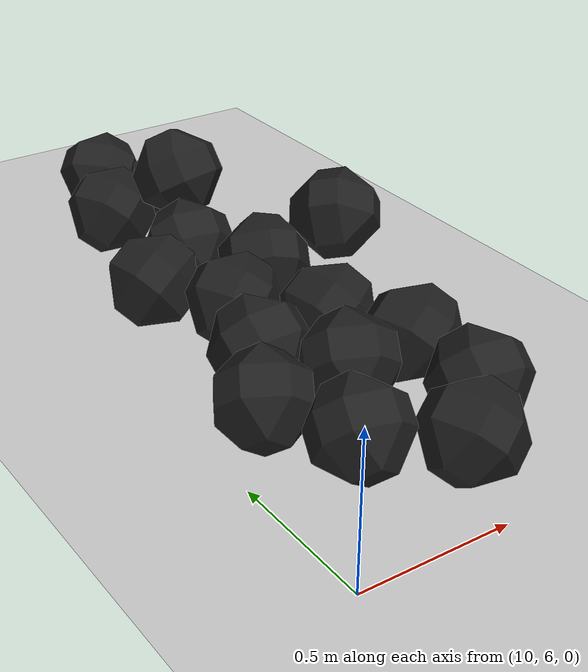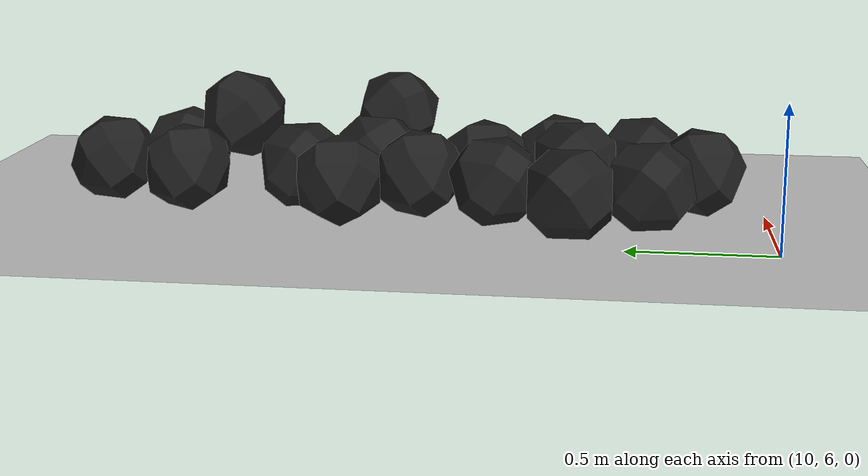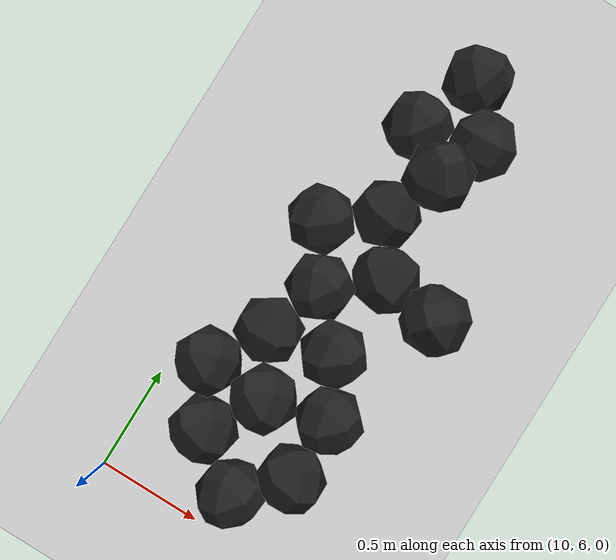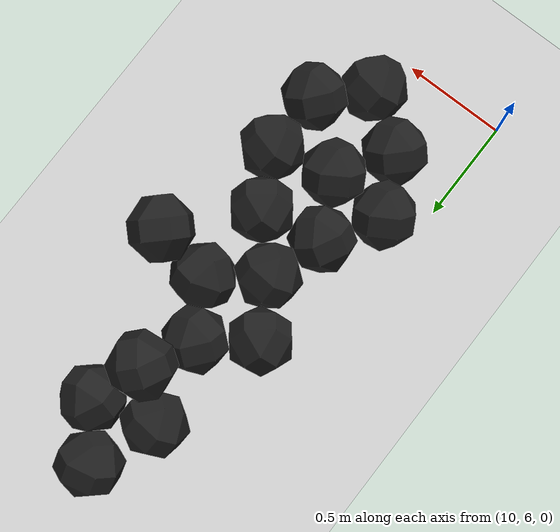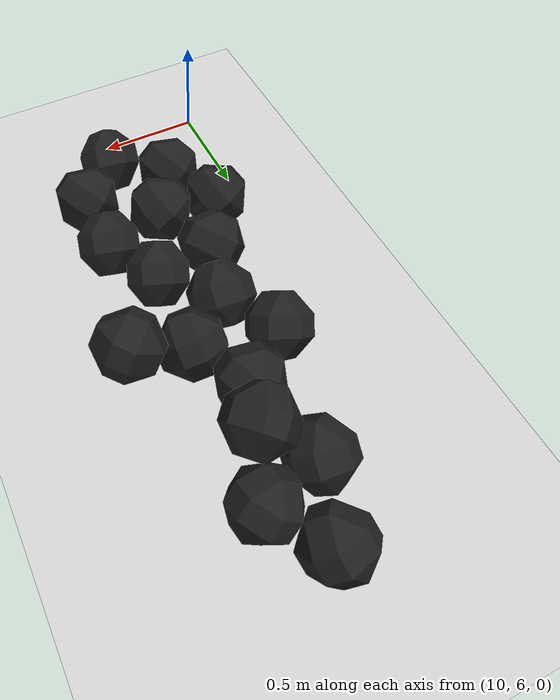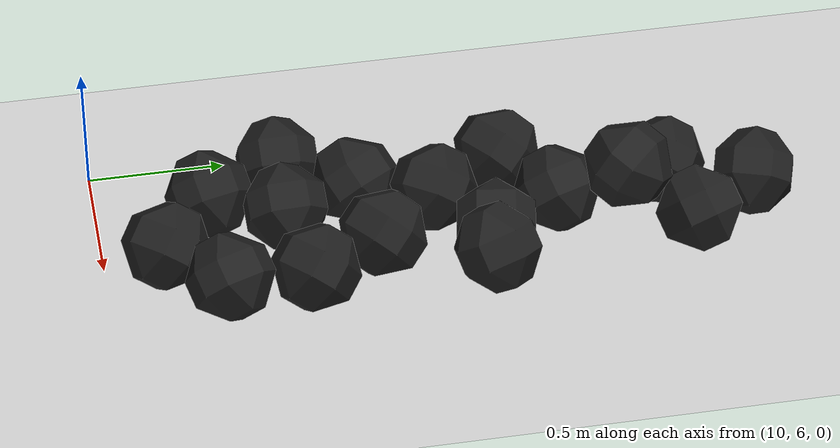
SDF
<sdf version="1.7">
 <world name="default">
  <model name="ground_plane">
   <static>1</static>
   <link name="link">
    <collision name="collision">
     <geometry><plane><normal>0 0 1</normal><size>100 100</size></plane></geometry>
     <surface><friction><ode><mu>100</mu><mu2>50</mu2></ode></friction></surface>
    </collision>
    <visual name="visual">
     <cast_shadows>0</cast_shadows>
     <geometry><plane><normal>0 0 1</normal><size>100 100</size></plane></geometry>
     <material>
      <script><uri>file://media/materials/scripts/gazebo.material</uri><name>Gazebo/Grey</name></script>
     </material>
    </visual>
   </link>
  </model>
  <model name="haoduomiantiaa_1">
   <link name="link_0">
    <inertial>
     <mass>0.2</mass>
     <inertia>
      <ixx>0.166667</ixx>
      <ixy>0</ixy>
      <ixz>0</ixz>
      <iyy>0.166667</iyy>
      <iyz>0</iyz>
      <izz>0.166667</izz>
     </inertia>
    </inertial>
    <visual name="visual">
     <geometry>
      <mesh>
       <uri>/home/lihaoyang/catkin_ws/src/pudong_gazebo/world/stl/haoduomianti.stl</uri>
       <scale>1 1 1</scale>
      </mesh>
     </geometry>
     <material>
      <lighting>1</lighting>
      <script><uri>file://media/materials/scripts/gazebo.material</uri><name>Gazebo/Black</name></script>
      <shader type="pixel"><normal_map>__default__</normal_map></shader>
      <ambient>0.3 0.3 0.3 1</ambient>
      <diffuse>0.7 0.7 0.7 1</diffuse>
      <specular>0.01 0.01 0.01 1</specular>
      <emissive>0 0 0 1</emissive>
     </material>
    </visual>
    <collision name="collision">
     <geometry>
      <mesh>
       <uri>/home/lihaoyang/catkin_ws/src/pudong_gazebo/world/stl/haoduomianti.stl</uri>
       <scale>1 1 1</scale>
      </mesh>
     </geometry>
     <surface>
      <friction>
       <ode><mu>1</mu><mu2>1</mu2><fdir1>0 0 0</fdir1><slip1>0</slip1><slip2>0</slip2></ode>
       <torsional>
        <coefficient>1</coefficient>
        <patch_radius>0</patch_radius>
        <surface_radius>0</surface_radius>
        <use_patch_radius>1</use_patch_radius>
        <ode><slip>0</slip></ode>
       </torsional>
      </friction>
      <bounce><restitution_coefficient>0</restitution_coefficient><threshold>1e+06</threshold></bounce>
      <contact>
       <collide_without_contact>0</collide_without_contact>
       <collide_without_contact_bitmask>1</collide_without_contact_bitmask>
       <collide_bitmask>1</collide_bitmask>
       <ode>
        <soft_cfm>0</soft_cfm>
        <soft_erp>0.2</soft_erp>
        <kp>1e+13</kp>
        <kd>1</kd>
        <max_vel>0.01</max_vel>
        <min_depth>0</min_depth>
       </ode>
       <bullet>
        <split_impulse>1</split_impulse>
        <split_impulse_penetration_threshold>-0.01</split_impulse_penetration_threshold>
        <soft_cfm>0</soft_cfm>
        <soft_erp>0.2</soft_erp>
        <kp>1e+13</kp>
        <kd>1</kd>
       </bullet>
      </contact>
     </surface>
    </collision>
   </link>
   <static>0</static>
   <pose>10.7707 6.73714 -0.115511 0.785241 -0.615547 0.266136</pose>
  </model>
  <model name="haoduomiantiaa_9">
   <link name="link_0">
    <inertial>
     <mass>0.2</mass>
     <inertia>
      <ixx>0.166667</ixx>
      <ixy>0</ixy>
      <ixz>0</ixz>
      <iyy>0.166667</iyy>
      <iyz>0</iyz>
      <izz>0.166667</izz>
     </inertia>
    </inertial>
    <visual name="visual">
     <geometry>
      <mesh>
       <uri>/home/lihaoyang/catkin_ws/src/pudong_gazebo/world/stl/haoduomianti.stl</uri>
       <scale>1 1 1</scale>
      </mesh>
     </geometry>
     <material>
      <lighting>1</lighting>
      <script><uri>file://media/materials/scripts/gazebo.material</uri><name>Gazebo/Black</name></script>
      <shader type="pixel"><normal_map>__default__</normal_map></shader>
      <ambient>0.3 0.3 0.3 1</ambient>
      <diffuse>0.7 0.7 0.7 1</diffuse>
      <specular>0.01 0.01 0.01 1</specular>
      <emissive>0 0 0 1</emissive>
     </material>
    </visual>
    <collision name="collision">
     <geometry>
      <mesh>
       <uri>/home/lihaoyang/catkin_ws/src/pudong_gazebo/world/stl/haoduomianti.stl</uri>
       <scale>1 1 1</scale>
      </mesh>
     </geometry>
     <surface>
      <friction>
       <ode><mu>1</mu><mu2>1</mu2><fdir1>0 0 0</fdir1><slip1>0</slip1><slip2>0</slip2></ode>
       <torsional>
        <coefficient>1</coefficient>
        <patch_radius>0</patch_radius>
        <surface_radius>0</surface_radius>
        <use_patch_radius>1</use_patch_radius>
        <ode><slip>0</slip></ode>
       </torsional>
      </friction>
      <bounce><restitution_coefficient>0</restitution_coefficient><threshold>1e+06</threshold></bounce>
      <contact>
       <collide_without_contact>0</collide_without_contact>
       <collide_without_contact_bitmask>1</collide_without_contact_bitmask>
       <collide_bitmask>1</collide_bitmask>
       <ode>
        <soft_cfm>0</soft_cfm>
        <soft_erp>0.2</soft_erp>
        <kp>1e+13</kp>
        <kd>1</kd>
        <max_vel>0.01</max_vel>
        <min_depth>0</min_depth>
       </ode>
       <bullet>
        <split_impulse>1</split_impulse>
        <split_impulse_penetration_threshold>-0.01</split_impulse_penetration_threshold>
        <soft_cfm>0</soft_cfm>
        <soft_erp>0.2</soft_erp>
        <kp>1e+13</kp>
        <kd>1</kd>
       </bullet>
      </contact>
     </surface>
    </collision>
   </link>
   <static>0</static>
   <pose>10.7412 7.39431 -0.094796 0.373444 -0.749649 1.1395</pose>
  </model>
  <model name="haoduomiantiaa_11">
   <link name="link_0">
    <inertial>
     <mass>0.2</mass>
     <inertia>
      <ixx>0.166667</ixx>
      <ixy>0</ixy>
      <ixz>0</ixz>
      <iyy>0.166667</iyy>
      <iyz>0</iyz>
      <izz>0.166667</izz>
     </inertia>
    </inertial>
    <visual name="visual">
     <geometry>
      <mesh>
       <uri>/home/lihaoyang/catkin_ws/src/pudong_gazebo/world/stl/haoduomianti.stl</uri>
       <scale>1 1 1</scale>
      </mesh>
     </geometry>
     <material>
      <lighting>1</lighting>
      <script><uri>file://media/materials/scripts/gazebo.material</uri><name>Gazebo/Black</name></script>
      <shader type="pixel"><normal_map>__default__</normal_map></shader>
      <ambient>0.3 0.3 0.3 1</ambient>
      <diffuse>0.7 0.7 0.7 1</diffuse>
      <specular>0.01 0.01 0.01 1</specular>
      <emissive>0 0 0 1</emissive>
     </material>
    </visual>
    <collision name="collision">
     <geometry>
      <mesh>
       <uri>/home/lihaoyang/catkin_ws/src/pudong_gazebo/world/stl/haoduomianti.stl</uri>
       <scale>1 1 1</scale>
      </mesh>
     </geometry>
     <surface>
      <friction>
       <ode><mu>1</mu><mu2>1</mu2><fdir1>0 0 0</fdir1><slip1>0</slip1><slip2>0</slip2></ode>
       <torsional>
        <coefficient>1</coefficient>
        <patch_radius>0</patch_radius>
        <surface_radius>0</surface_radius>
        <use_patch_radius>1</use_patch_radius>
        <ode><slip>0</slip></ode>
       </torsional>
      </friction>
      <bounce><restitution_coefficient>0</restitution_coefficient><threshold>1e+06</threshold></bounce>
      <contact>
       <collide_without_contact>0</collide_without_contact>
       <collide_without_contact_bitmask>1</collide_without_contact_bitmask>
       <collide_bitmask>1</collide_bitmask>
       <ode>
        <soft_cfm>0</soft_cfm>
        <soft_erp>0.2</soft_erp>
        <kp>1e+13</kp>
        <kd>1</kd>
        <max_vel>0.01</max_vel>
        <min_depth>0</min_depth>
       </ode>
       <bullet>
        <split_impulse>1</split_impulse>
        <split_impulse_penetration_threshold>-0.01</split_impulse_penetration_threshold>
        <soft_cfm>0</soft_cfm>
        <soft_erp>0.2</soft_erp>
        <kp>1e+13</kp>
        <kd>1</kd>
       </bullet>
      </contact>
     </surface>
    </collision>
   </link>
   <static>0</static>
   <pose>10.2685 7.47808 -0.113912 0.74513 -0.633824 0.167006</pose>
  </model>
  <model name="haoduomiantiaa_21">
   <link name="link_0">
    <inertial>
     <mass>0.2</mass>
     <inertia>
      <ixx>0.166667</ixx>
      <ixy>0</ixy>
      <ixz>0</ixz>
      <iyy>0.166667</iyy>
      <iyz>0</iyz>
      <izz>0.166667</izz>
     </inertia>
    </inertial>
    <visual name="visual">
     <geometry>
      <mesh>
       <uri>/home/lihaoyang/catkin_ws/src/pudong_gazebo/world/stl/haoduomianti.stl</uri>
       <scale>1 1 1</scale>
      </mesh>
     </geometry>
     <material>
      <lighting>1</lighting>
      <script><uri>file://media/materials/scripts/gazebo.material</uri><name>Gazebo/Black</name></script>
      <shader type="pixel"><normal_map>__default__</normal_map></shader>
      <ambient>0.3 0.3 0.3 1</ambient>
      <diffuse>0.7 0.7 0.7 1</diffuse>
      <specular>0.01 0.01 0.01 1</specular>
      <emissive>0 0 0 1</emissive>
     </material>
    </visual>
    <collision name="collision">
     <geometry>
      <mesh>
       <uri>/home/lihaoyang/catkin_ws/src/pudong_gazebo/world/stl/haoduomianti.stl</uri>
       <scale>1 1 1</scale>
      </mesh>
     </geometry>
     <surface>
      <friction>
       <ode><mu>1</mu><mu2>1</mu2><fdir1>0 0 0</fdir1><slip1>0</slip1><slip2>0</slip2></ode>
       <torsional>
        <coefficient>1</coefficient>
        <patch_radius>0</patch_radius>
        <surface_radius>0</surface_radius>
        <use_patch_radius>1</use_patch_radius>
        <ode><slip>0</slip></ode>
       </torsional>
      </friction>
      <bounce><restitution_coefficient>0</restitution_coefficient><threshold>1e+06</threshold></bounce>
      <contact>
       <collide_without_contact>0</collide_without_contact>
       <collide_without_contact_bitmask>1</collide_without_contact_bitmask>
       <collide_bitmask>1</collide_bitmask>
       <ode>
        <soft_cfm>0</soft_cfm>
        <soft_erp>0.2</soft_erp>
        <kp>1e+13</kp>
        <kd>1</kd>
        <max_vel>0.01</max_vel>
        <min_depth>0</min_depth>
       </ode>
       <bullet>
        <split_impulse>1</split_impulse>
        <split_impulse_penetration_threshold>-0.01</split_impulse_penetration_threshold>
        <soft_cfm>0</soft_cfm>
        <soft_erp>0.2</soft_erp>
        <kp>1e+13</kp>
        <kd>1</kd>
       </bullet>
      </contact>
     </surface>
    </collision>
   </link>
   <static>0</static>
   <pose>10.7084 8.08724 -0.10261 1.06124 -0.717663 -2.71904</pose>
  </model>
  <model name="haoduomiantiaa_28">
   <link name="link_0">
    <inertial>
     <mass>0.2</mass>
     <inertia>
      <ixx>0.166667</ixx>
      <ixy>0</ixy>
      <ixz>0</ixz>
      <iyy>0.166667</iyy>
      <iyz>0</iyz>
      <izz>0.166667</izz>
     </inertia>
    </inertial>
    <visual name="visual">
     <geometry>
      <mesh>
       <uri>/home/lihaoyang/catkin_ws/src/pudong_gazebo/world/stl/haoduomianti.stl</uri>
       <scale>1 1 1</scale>
      </mesh>
     </geometry>
     <material>
      <lighting>1</lighting>
      <script><uri>file://media/materials/scripts/gazebo.material</uri><name>Gazebo/Black</name></script>
      <shader type="pixel"><normal_map>__default__</normal_map></shader>
      <ambient>0.3 0.3 0.3 1</ambient>
      <diffuse>0.7 0.7 0.7 1</diffuse>
      <specular>0.01 0.01 0.01 1</specular>
      <emissive>0 0 0 1</emissive>
     </material>
    </visual>
    <collision name="collision">
     <geometry>
      <mesh>
       <uri>/home/lihaoyang/catkin_ws/src/pudong_gazebo/world/stl/haoduomianti.stl</uri>
       <scale>1 1 1</scale>
      </mesh>
     </geometry>
     <surface>
      <friction>
       <ode><mu>1</mu><mu2>1</mu2><fdir1>0 0 0</fdir1><slip1>0</slip1><slip2>0</slip2></ode>
       <torsional>
        <coefficient>1</coefficient>
        <patch_radius>0</patch_radius>
        <surface_radius>0</surface_radius>
        <use_patch_radius>1</use_patch_radius>
        <ode><slip>0</slip></ode>
       </torsional>
      </friction>
      <bounce><restitution_coefficient>0</restitution_coefficient><threshold>1e+06</threshold></bounce>
      <contact>
       <collide_without_contact>0</collide_without_contact>
       <collide_without_contact_bitmask>1</collide_without_contact_bitmask>
       <collide_bitmask>1</collide_bitmask>
       <ode>
        <soft_cfm>0</soft_cfm>
        <soft_erp>0.2</soft_erp>
        <kp>1e+13</kp>
        <kd>1</kd>
        <max_vel>0.01</max_vel>
        <min_depth>0</min_depth>
       </ode>
       <bullet>
        <split_impulse>1</split_impulse>
        <split_impulse_penetration_threshold>-0.01</split_impulse_penetration_threshold>
        <soft_cfm>0</soft_cfm>
        <soft_erp>0.2</soft_erp>
        <kp>1e+13</kp>
        <kd>1</kd>
       </bullet>
      </contact>
     </surface>
    </collision>
   </link>
   <static>0</static>
   <pose>10.4175 7.22543 -0.115694 0.785336 -0.615515 -1.64544</pose>
  </model>
  <model name="haoduomiantiaa_31">
   <link name="link_0">
    <inertial>
     <mass>0.2</mass>
     <inertia>
      <ixx>0.166667</ixx>
      <ixy>0</ixy>
      <ixz>0</ixz>
      <iyy>0.166667</iyy>
      <iyz>0</iyz>
      <izz>0.166667</izz>
     </inertia>
    </inertial>
    <visual name="visual">
     <geometry>
      <mesh>
       <uri>/home/lihaoyang/catkin_ws/src/pudong_gazebo/world/stl/haoduomianti.stl</uri>
       <scale>1 1 1</scale>
      </mesh>
     </geometry>
     <material>
      <lighting>1</lighting>
      <script><uri>file://media/materials/scripts/gazebo.material</uri><name>Gazebo/Black</name></script>
      <shader type="pixel"><normal_map>__default__</normal_map></shader>
      <ambient>0.3 0.3 0.3 1</ambient>
      <diffuse>0.7 0.7 0.7 1</diffuse>
      <specular>0.01 0.01 0.01 1</specular>
      <emissive>0 0 0 1</emissive>
     </material>
    </visual>
    <collision name="collision">
     <geometry>
      <mesh>
       <uri>/home/lihaoyang/catkin_ws/src/pudong_gazebo/world/stl/haoduomianti.stl</uri>
       <scale>1 1 1</scale>
      </mesh>
     </geometry>
     <surface>
      <friction>
       <ode><mu>1</mu><mu2>1</mu2><fdir1>0 0 0</fdir1><slip1>0</slip1><slip2>0</slip2></ode>
       <torsional>
        <coefficient>1</coefficient>
        <patch_radius>0</patch_radius>
        <surface_radius>0</surface_radius>
        <use_patch_radius>1</use_patch_radius>
        <ode><slip>0</slip></ode>
       </torsional>
      </friction>
      <bounce><restitution_coefficient>0</restitution_coefficient><threshold>1e+06</threshold></bounce>
      <contact>
       <collide_without_contact>0</collide_without_contact>
       <collide_without_contact_bitmask>1</collide_without_contact_bitmask>
       <collide_bitmask>1</collide_bitmask>
       <ode>
        <soft_cfm>0</soft_cfm>
        <soft_erp>0.2</soft_erp>
        <kp>1e+13</kp>
        <kd>1</kd>
        <max_vel>0.01</max_vel>
        <min_depth>0</min_depth>
       </ode>
       <bullet>
        <split_impulse>1</split_impulse>
        <split_impulse_penetration_threshold>-0.01</split_impulse_penetration_threshold>
        <soft_cfm>0</soft_cfm>
        <soft_erp>0.2</soft_erp>
        <kp>1e+13</kp>
        <kd>1</kd>
       </bullet>
      </contact>
     </surface>
    </collision>
   </link>
   <static>0</static>
   <pose>10.501 7.66325 -0.115425 0.785508 -0.615625 -2.77699</pose>
  </model>
  <model name="haoduomiantiaa_33">
   <link name="link_0">
    <inertial>
     <mass>0.2</mass>
     <inertia>
      <ixx>0.166667</ixx>
      <ixy>0</ixy>
      <ixz>0</ixz>
      <iyy>0.166667</iyy>
      <iyz>0</iyz>
      <izz>0.166667</izz>
     </inertia>
    </inertial>
    <visual name="visual">
     <geometry>
      <mesh>
       <uri>/home/lihaoyang/catkin_ws/src/pudong_gazebo/world/stl/haoduomianti.stl</uri>
       <scale>1 1 1</scale>
      </mesh>
     </geometry>
     <material>
      <lighting>1</lighting>
      <script><uri>file://media/materials/scripts/gazebo.material</uri><name>Gazebo/Black</name></script>
      <shader type="pixel"><normal_map>__default__</normal_map></shader>
      <ambient>0.3 0.3 0.3 1</ambient>
      <diffuse>0.7 0.7 0.7 1</diffuse>
      <specular>0.01 0.01 0.01 1</specular>
      <emissive>0 0 0 1</emissive>
     </material>
    </visual>
    <collision name="collision">
     <geometry>
      <mesh>
       <uri>/home/lihaoyang/catkin_ws/src/pudong_gazebo/world/stl/haoduomianti.stl</uri>
       <scale>1 1 1</scale>
      </mesh>
     </geometry>
     <surface>
      <friction>
       <ode><mu>1</mu><mu2>1</mu2><fdir1>0 0 0</fdir1><slip1>0</slip1><slip2>0</slip2></ode>
       <torsional>
        <coefficient>1</coefficient>
        <patch_radius>0</patch_radius>
        <surface_radius>0</surface_radius>
        <use_patch_radius>1</use_patch_radius>
        <ode><slip>0</slip></ode>
       </torsional>
      </friction>
      <bounce><restitution_coefficient>0</restitution_coefficient><threshold>1e+06</threshold></bounce>
      <contact>
       <collide_without_contact>0</collide_without_contact>
       <collide_without_contact_bitmask>1</collide_without_contact_bitmask>
       <collide_bitmask>1</collide_bitmask>
       <ode>
        <soft_cfm>0</soft_cfm>
        <soft_erp>0.2</soft_erp>
        <kp>1e+13</kp>
        <kd>1</kd>
        <max_vel>0.01</max_vel>
        <min_depth>0</min_depth>
       </ode>
       <bullet>
        <split_impulse>1</split_impulse>
        <split_impulse_penetration_threshold>-0.01</split_impulse_penetration_threshold>
        <soft_cfm>0</soft_cfm>
        <soft_erp>0.2</soft_erp>
        <kp>1e+13</kp>
        <kd>1</kd>
       </bullet>
      </contact>
     </surface>
    </collision>
   </link>
   <static>0</static>
   <pose>10.1697 6.68176 -0.115468 0.785363 -0.615492 1.06337</pose>
  </model>
  <model name="haoduomiantiaa_34">
   <link name="link_0">
    <inertial>
     <mass>0.2</mass>
     <inertia>
      <ixx>0.166667</ixx>
      <ixy>0</ixy>
      <ixz>0</ixz>
      <iyy>0.166667</iyy>
      <iyz>0</iyz>
      <izz>0.166667</izz>
     </inertia>
    </inertial>
    <visual name="visual">
     <geometry>
      <mesh>
       <uri>/home/lihaoyang/catkin_ws/src/pudong_gazebo/world/stl/haoduomianti.stl</uri>
       <scale>1 1 1</scale>
      </mesh>
     </geometry>
     <material>
      <lighting>1</lighting>
      <script><uri>file://media/materials/scripts/gazebo.material</uri><name>Gazebo/Black</name></script>
      <shader type="pixel"><normal_map>__default__</normal_map></shader>
      <ambient>0.3 0.3 0.3 1</ambient>
      <diffuse>0.7 0.7 0.7 1</diffuse>
      <specular>0.01 0.01 0.01 1</specular>
      <emissive>0 0 0 1</emissive>
     </material>
    </visual>
    <collision name="collision">
     <geometry>
      <mesh>
       <uri>/home/lihaoyang/catkin_ws/src/pudong_gazebo/world/stl/haoduomianti.stl</uri>
       <scale>1 1 1</scale>
      </mesh>
     </geometry>
     <surface>
      <friction>
       <ode><mu>1</mu><mu2>1</mu2><fdir1>0 0 0</fdir1><slip1>0</slip1><slip2>0</slip2></ode>
       <torsional>
        <coefficient>1</coefficient>
        <patch_radius>0</patch_radius>
        <surface_radius>0</surface_radius>
        <use_patch_radius>1</use_patch_radius>
        <ode><slip>0</slip></ode>
       </torsional>
      </friction>
      <bounce><restitution_coefficient>0</restitution_coefficient><threshold>1e+06</threshold></bounce>
      <contact>
       <collide_without_contact>0</collide_without_contact>
       <collide_without_contact_bitmask>1</collide_without_contact_bitmask>
       <collide_bitmask>1</collide_bitmask>
       <ode>
        <soft_cfm>0</soft_cfm>
        <soft_erp>0.2</soft_erp>
        <kp>1e+13</kp>
        <kd>1</kd>
        <max_vel>0.01</max_vel>
        <min_depth>0</min_depth>
       </ode>
       <bullet>
        <split_impulse>1</split_impulse>
        <split_impulse_penetration_threshold>-0.01</split_impulse_penetration_threshold>
        <soft_cfm>0</soft_cfm>
        <soft_erp>0.2</soft_erp>
        <kp>1e+13</kp>
        <kd>1</kd>
       </bullet>
      </contact>
     </surface>
    </collision>
   </link>
   <static>0</static>
   <pose>10.3108 6.41066 -0.115508 0.785402 -0.615467 -0.781503</pose>
  </model>
  <model name="haoduomiantiaa_36">
   <link name="link_0">
    <inertial>
     <mass>0.2</mass>
     <inertia>
      <ixx>0.166667</ixx>
      <ixy>0</ixy>
      <ixz>0</ixz>
      <iyy>0.166667</iyy>
      <iyz>0</iyz>
      <izz>0.166667</izz>
     </inertia>
    </inertial>
    <visual name="visual">
     <geometry>
      <mesh>
       <uri>/home/lihaoyang/catkin_ws/src/pudong_gazebo/world/stl/haoduomianti.stl</uri>
       <scale>1 1 1</scale>
      </mesh>
     </geometry>
     <material>
      <lighting>1</lighting>
      <script><uri>file://media/materials/scripts/gazebo.material</uri><name>Gazebo/Black</name></script>
      <shader type="pixel"><normal_map>__default__</normal_map></shader>
      <ambient>0.3 0.3 0.3 1</ambient>
      <diffuse>0.7 0.7 0.7 1</diffuse>
      <specular>0.01 0.01 0.01 1</specular>
      <emissive>0 0 0 1</emissive>
     </material>
    </visual>
    <collision name="collision">
     <geometry>
      <mesh>
       <uri>/home/lihaoyang/catkin_ws/src/pudong_gazebo/world/stl/haoduomianti.stl</uri>
       <scale>1 1 1</scale>
      </mesh>
     </geometry>
     <surface>
      <friction>
       <ode><mu>1</mu><mu2>1</mu2><fdir1>0 0 0</fdir1><slip1>0</slip1><slip2>0</slip2></ode>
       <torsional>
        <coefficient>1</coefficient>
        <patch_radius>0</patch_radius>
        <surface_radius>0</surface_radius>
        <use_patch_radius>1</use_patch_radius>
        <ode><slip>0</slip></ode>
       </torsional>
      </friction>
      <bounce><restitution_coefficient>0</restitution_coefficient><threshold>1e+06</threshold></bounce>
      <contact>
       <collide_without_contact>0</collide_without_contact>
       <collide_without_contact_bitmask>1</collide_without_contact_bitmask>
       <collide_bitmask>1</collide_bitmask>
       <ode>
        <soft_cfm>0</soft_cfm>
        <soft_erp>0.2</soft_erp>
        <kp>1e+13</kp>
        <kd>1</kd>
        <max_vel>0.01</max_vel>
        <min_depth>0</min_depth>
       </ode>
       <bullet>
        <split_impulse>1</split_impulse>
        <split_impulse_penetration_threshold>-0.01</split_impulse_penetration_threshold>
        <soft_cfm>0</soft_cfm>
        <soft_erp>0.2</soft_erp>
        <kp>1e+13</kp>
        <kd>1</kd>
       </bullet>
      </contact>
     </surface>
    </collision>
   </link>
   <static>0</static>
   <pose>10.8323 7.41841 0.035604 0.361168 -0.87682 -2.65538</pose>
  </model>
  <model name="haoduomiantiaa_68">
   <link name="link_0">
    <inertial>
     <mass>0.2</mass>
     <inertia>
      <ixx>0.166667</ixx>
      <ixy>0</ixy>
      <ixz>0</ixz>
      <iyy>0.166667</iyy>
      <iyz>0</iyz>
      <izz>0.166667</izz>
     </inertia>
    </inertial>
    <visual name="visual">
     <geometry>
      <mesh>
       <uri>/home/lihaoyang/catkin_ws/src/pudong_gazebo/world/stl/haoduomianti.stl</uri>
       <scale>1 1 1</scale>
      </mesh>
     </geometry>
     <material>
      <lighting>1</lighting>
      <script><uri>file://media/materials/scripts/gazebo.material</uri><name>Gazebo/Black</name></script>
      <shader type="pixel"><normal_map>__default__</normal_map></shader>
      <ambient>0.3 0.3 0.3 1</ambient>
      <diffuse>0.7 0.7 0.7 1</diffuse>
      <specular>0.01 0.01 0.01 1</specular>
      <emissive>0 0 0 1</emissive>
     </material>
    </visual>
    <collision name="collision">
     <geometry>
      <mesh>
       <uri>/home/lihaoyang/catkin_ws/src/pudong_gazebo/world/stl/haoduomianti.stl</uri>
       <scale>1 1 1</scale>
      </mesh>
     </geometry>
     <surface>
      <friction>
       <ode><mu>1</mu><mu2>1</mu2><fdir1>0 0 0</fdir1><slip1>0</slip1><slip2>0</slip2></ode>
       <torsional>
        <coefficient>1</coefficient>
        <patch_radius>0</patch_radius>
        <surface_radius>0</surface_radius>
        <use_patch_radius>1</use_patch_radius>
        <ode><slip>0</slip></ode>
       </torsional>
      </friction>
      <bounce><restitution_coefficient>0</restitution_coefficient><threshold>1e+06</threshold></bounce>
      <contact>
       <collide_without_contact>0</collide_without_contact>
       <collide_without_contact_bitmask>1</collide_without_contact_bitmask>
       <collide_bitmask>1</collide_bitmask>
       <ode>
        <soft_cfm>0</soft_cfm>
        <soft_erp>0.2</soft_erp>
        <kp>1e+13</kp>
        <kd>1</kd>
        <max_vel>0.01</max_vel>
        <min_depth>0</min_depth>
       </ode>
       <bullet>
        <split_impulse>1</split_impulse>
        <split_impulse_penetration_threshold>-0.01</split_impulse_penetration_threshold>
        <soft_cfm>0</soft_cfm>
        <soft_erp>0.2</soft_erp>
        <kp>1e+13</kp>
        <kd>1</kd>
       </bullet>
      </contact>
     </surface>
    </collision>
   </link>
   <static>0</static>
   <pose>10.4106 8.07119 -0.115469 0.785385 -0.61548 0.430348</pose>
  </model>
  <model name="haoduomiantiaa_72">
   <link name="link_0">
    <inertial>
     <mass>0.2</mass>
     <inertia>
      <ixx>0.166667</ixx>
      <ixy>0</ixy>
      <ixz>0</ixz>
      <iyy>0.166667</iyy>
      <iyz>0</iyz>
      <izz>0.166667</izz>
     </inertia>
    </inertial>
    <visual name="visual">
     <geometry>
      <mesh>
       <uri>/home/lihaoyang/catkin_ws/src/pudong_gazebo/world/stl/haoduomianti.stl</uri>
       <scale>1 1 1</scale>
      </mesh>
     </geometry>
     <material>
      <lighting>1</lighting>
      <script><uri>file://media/materials/scripts/gazebo.material</uri><name>Gazebo/Black</name></script>
      <shader type="pixel"><normal_map>__default__</normal_map></shader>
      <ambient>0.3 0.3 0.3 1</ambient>
      <diffuse>0.7 0.7 0.7 1</diffuse>
      <specular>0.01 0.01 0.01 1</specular>
      <emissive>0 0 0 1</emissive>
     </material>
    </visual>
    <collision name="collision">
     <geometry>
      <mesh>
       <uri>/home/lihaoyang/catkin_ws/src/pudong_gazebo/world/stl/haoduomianti.stl</uri>
       <scale>1 1 1</scale>
      </mesh>
     </geometry>
     <surface>
      <friction>
       <ode><mu>1</mu><mu2>1</mu2><fdir1>0 0 0</fdir1><slip1>0</slip1><slip2>0</slip2></ode>
       <torsional>
        <coefficient>1</coefficient>
        <patch_radius>0</patch_radius>
        <surface_radius>0</surface_radius>
        <use_patch_radius>1</use_patch_radius>
        <ode><slip>0</slip></ode>
       </torsional>
      </friction>
      <bounce><restitution_coefficient>0</restitution_coefficient><threshold>1e+06</threshold></bounce>
      <contact>
       <collide_without_contact>0</collide_without_contact>
       <collide_without_contact_bitmask>1</collide_without_contact_bitmask>
       <collide_bitmask>1</collide_bitmask>
       <ode>
        <soft_cfm>0</soft_cfm>
        <soft_erp>0.2</soft_erp>
        <kp>1e+13</kp>
        <kd>1</kd>
        <max_vel>0.01</max_vel>
        <min_depth>0</min_depth>
       </ode>
       <bullet>
        <split_impulse>1</split_impulse>
        <split_impulse_penetration_threshold>-0.01</split_impulse_penetration_threshold>
        <soft_cfm>0</soft_cfm>
        <soft_erp>0.2</soft_erp>
        <kp>1e+13</kp>
        <kd>1</kd>
       </bullet>
      </contact>
     </surface>
    </collision>
   </link>
   <static>0</static>
   <pose>10.5313 8.38991 -0.11548 0.785395 -0.615479 2.83144</pose>
  </model>
  <model name="haoduomiantiaa_77">
   <link name="link_0">
    <inertial>
     <mass>0.2</mass>
     <inertia>
      <ixx>0.166667</ixx>
      <ixy>0</ixy>
      <ixz>0</ixz>
      <iyy>0.166667</iyy>
      <iyz>0</iyz>
      <izz>0.166667</izz>
     </inertia>
    </inertial>
    <visual name="visual">
     <geometry>
      <mesh>
       <uri>/home/lihaoyang/catkin_ws/src/pudong_gazebo/world/stl/haoduomianti.stl</uri>
       <scale>1 1 1</scale>
      </mesh>
     </geometry>
     <material>
      <lighting>1</lighting>
      <script><uri>file://media/materials/scripts/gazebo.material</uri><name>Gazebo/Black</name></script>
      <shader type="pixel"><normal_map>__default__</normal_map></shader>
      <ambient>0.3 0.3 0.3 1</ambient>
      <diffuse>0.7 0.7 0.7 1</diffuse>
      <specular>0.01 0.01 0.01 1</specular>
      <emissive>0 0 0 1</emissive>
     </material>
    </visual>
    <collision name="collision">
     <geometry>
      <mesh>
       <uri>/home/lihaoyang/catkin_ws/src/pudong_gazebo/world/stl/haoduomianti.stl</uri>
       <scale>1 1 1</scale>
      </mesh>
     </geometry>
     <surface>
      <friction>
       <ode><mu>1</mu><mu2>1</mu2><fdir1>0 0 0</fdir1><slip1>0</slip1><slip2>0</slip2></ode>
       <torsional>
        <coefficient>1</coefficient>
        <patch_radius>0</patch_radius>
        <surface_radius>0</surface_radius>
        <use_patch_radius>1</use_patch_radius>
        <ode><slip>0</slip></ode>
       </torsional>
      </friction>
      <bounce><restitution_coefficient>0</restitution_coefficient><threshold>1e+06</threshold></bounce>
      <contact>
       <collide_without_contact>0</collide_without_contact>
       <collide_without_contact_bitmask>1</collide_without_contact_bitmask>
       <collide_bitmask>1</collide_bitmask>
       <ode>
        <soft_cfm>0</soft_cfm>
        <soft_erp>0.2</soft_erp>
        <kp>1e+13</kp>
        <kd>1</kd>
        <max_vel>0.01</max_vel>
        <min_depth>0</min_depth>
       </ode>
       <bullet>
        <split_impulse>1</split_impulse>
        <split_impulse_penetration_threshold>-0.01</split_impulse_penetration_threshold>
        <soft_cfm>0</soft_cfm>
        <soft_erp>0.2</soft_erp>
        <kp>1e+13</kp>
        <kd>1</kd>
       </bullet>
      </contact>
     </surface>
    </collision>
   </link>
   <static>0</static>
   <pose>10.5646 6.22619 -0.115479 0.785402 -0.615484 2.46216</pose>
  </model>
  <model name="haoduomiantiaa_98">
   <link name="link_0">
    <inertial>
     <mass>0.2</mass>
     <inertia>
      <ixx>0.166667</ixx>
      <ixy>0</ixy>
      <ixz>0</ixz>
      <iyy>0.166667</iyy>
      <iyz>0</iyz>
      <izz>0.166667</izz>
     </inertia>
    </inertial>
    <visual name="visual">
     <geometry>
      <mesh>
       <uri>/home/lihaoyang/catkin_ws/src/pudong_gazebo/world/stl/haoduomianti.stl</uri>
       <scale>1 1 1</scale>
      </mesh>
     </geometry>
     <material>
      <lighting>1</lighting>
      <script><uri>file://media/materials/scripts/gazebo.material</uri><name>Gazebo/Black</name></script>
      <shader type="pixel"><normal_map>__default__</normal_map></shader>
      <ambient>0.3 0.3 0.3 1</ambient>
      <diffuse>0.7 0.7 0.7 1</diffuse>
      <specular>0.01 0.01 0.01 1</specular>
      <emissive>0 0 0 1</emissive>
     </material>
    </visual>
    <collision name="collision">
     <geometry>
      <mesh>
       <uri>/home/lihaoyang/catkin_ws/src/pudong_gazebo/world/stl/haoduomianti.stl</uri>
       <scale>1 1 1</scale>
      </mesh>
     </geometry>
     <surface>
      <friction>
       <ode><mu>1</mu><mu2>1</mu2><fdir1>0 0 0</fdir1><slip1>0</slip1><slip2>0</slip2></ode>
       <torsional>
        <coefficient>1</coefficient>
        <patch_radius>0</patch_radius>
        <surface_radius>0</surface_radius>
        <use_patch_radius>1</use_patch_radius>
        <ode><slip>0</slip></ode>
       </torsional>
      </friction>
      <bounce><restitution_coefficient>0</restitution_coefficient><threshold>1e+06</threshold></bounce>
      <contact>
       <collide_without_contact>0</collide_without_contact>
       <collide_without_contact_bitmask>1</collide_without_contact_bitmask>
       <collide_bitmask>1</collide_bitmask>
       <ode>
        <soft_cfm>0</soft_cfm>
        <soft_erp>0.2</soft_erp>
        <kp>1e+13</kp>
        <kd>1</kd>
        <max_vel>0.01</max_vel>
        <min_depth>0</min_depth>
       </ode>
       <bullet>
        <split_impulse>1</split_impulse>
        <split_impulse_penetration_threshold>-0.01</split_impulse_penetration_threshold>
        <soft_cfm>0</soft_cfm>
        <soft_erp>0.2</soft_erp>
        <kp>1e+13</kp>
        <kd>1</kd>
       </bullet>
      </contact>
     </surface>
    </collision>
   </link>
   <static>0</static>
   <pose>10.3264 6.94375 -0.115467 0.785353 -0.615466 -0.472421</pose>
  </model>
  <model name="haoduomiantiaa_112">
   <link name="link_0">
    <inertial>
     <mass>0.2</mass>
     <inertia>
      <ixx>0.166667</ixx>
      <ixy>0</ixy>
      <ixz>0</ixz>
      <iyy>0.166667</iyy>
      <iyz>0</iyz>
      <izz>0.166667</izz>
     </inertia>
    </inertial>
    <visual name="visual">
     <geometry>
      <mesh>
       <uri>/home/lihaoyang/catkin_ws/src/pudong_gazebo/world/stl/haoduomianti.stl</uri>
       <scale>1 1 1</scale>
      </mesh>
     </geometry>
     <material>
      <lighting>1</lighting>
      <script><uri>file://media/materials/scripts/gazebo.material</uri><name>Gazebo/Black</name></script>
      <shader type="pixel"><normal_map>__default__</normal_map></shader>
      <ambient>0.3 0.3 0.3 1</ambient>
      <diffuse>0.7 0.7 0.7 1</diffuse>
      <specular>0.01 0.01 0.01 1</specular>
      <emissive>0 0 0 1</emissive>
     </material>
    </visual>
    <collision name="collision">
     <geometry>
      <mesh>
       <uri>/home/lihaoyang/catkin_ws/src/pudong_gazebo/world/stl/haoduomianti.stl</uri>
       <scale>1 1 1</scale>
      </mesh>
     </geometry>
     <surface>
      <friction>
       <ode><mu>1</mu><mu2>1</mu2><fdir1>0 0 0</fdir1><slip1>0</slip1><slip2>0</slip2></ode>
       <torsional>
        <coefficient>1</coefficient>
        <patch_radius>0</patch_radius>
        <surface_radius>0</surface_radius>
        <use_patch_radius>1</use_patch_radius>
        <ode><slip>0</slip></ode>
       </torsional>
      </friction>
      <bounce><restitution_coefficient>0</restitution_coefficient><threshold>1e+06</threshold></bounce>
      <contact>
       <collide_without_contact>0</collide_without_contact>
       <collide_without_contact_bitmask>1</collide_without_contact_bitmask>
       <collide_bitmask>1</collide_bitmask>
       <ode>
        <soft_cfm>0</soft_cfm>
        <soft_erp>0.2</soft_erp>
        <kp>1e+13</kp>
        <kd>1</kd>
        <max_vel>0.01</max_vel>
        <min_depth>0</min_depth>
       </ode>
       <bullet>
        <split_impulse>1</split_impulse>
        <split_impulse_penetration_threshold>-0.01</split_impulse_penetration_threshold>
        <soft_cfm>0</soft_cfm>
        <soft_erp>0.2</soft_erp>
        <kp>1e+13</kp>
        <kd>1</kd>
       </bullet>
      </contact>
     </surface>
    </collision>
   </link>
   <static>0</static>
   <pose>10.6045 7.99643 0.066428 1.17041 -0.450139 -0.600129</pose>
  </model>
  <model name="haoduomiantiaa_125">
   <link name="link_0">
    <inertial>
     <mass>0.2</mass>
     <inertia>
      <ixx>0.166667</ixx>
      <ixy>0</ixy>
      <ixz>0</ixz>
      <iyy>0.166667</iyy>
      <iyz>0</iyz>
      <izz>0.166667</izz>
     </inertia>
    </inertial>
    <visual name="visual">
     <geometry>
      <mesh>
       <uri>/home/lihaoyang/catkin_ws/src/pudong_gazebo/world/stl/haoduomianti.stl</uri>
       <scale>1 1 1</scale>
      </mesh>
     </geometry>
     <material>
      <lighting>1</lighting>
      <script><uri>file://media/materials/scripts/gazebo.material</uri><name>Gazebo/Black</name></script>
      <shader type="pixel"><normal_map>__default__</normal_map></shader>
      <ambient>0.3 0.3 0.3 1</ambient>
      <diffuse>0.7 0.7 0.7 1</diffuse>
      <specular>0.01 0.01 0.01 1</specular>
      <emissive>0 0 0 1</emissive>
     </material>
    </visual>
    <collision name="collision">
     <geometry>
      <mesh>
       <uri>/home/lihaoyang/catkin_ws/src/pudong_gazebo/world/stl/haoduomianti.stl</uri>
       <scale>1 1 1</scale>
      </mesh>
     </geometry>
     <surface>
      <friction>
       <ode><mu>1</mu><mu2>1</mu2><fdir1>0 0 0</fdir1><slip1>0</slip1><slip2>0</slip2></ode>
       <torsional>
        <coefficient>1</coefficient>
        <patch_radius>0</patch_radius>
        <surface_radius>0</surface_radius>
        <use_patch_radius>1</use_patch_radius>
        <ode><slip>0</slip></ode>
       </torsional>
      </friction>
      <bounce><restitution_coefficient>0</restitution_coefficient><threshold>1e+06</threshold></bounce>
      <contact>
       <collide_without_contact>0</collide_without_contact>
       <collide_without_contact_bitmask>1</collide_without_contact_bitmask>
       <collide_bitmask>1</collide_bitmask>
       <ode>
        <soft_cfm>0</soft_cfm>
        <soft_erp>0.2</soft_erp>
        <kp>1e+13</kp>
        <kd>1</kd>
        <max_vel>0.01</max_vel>
        <min_depth>0</min_depth>
       </ode>
       <bullet>
        <split_impulse>1</split_impulse>
        <split_impulse_penetration_threshold>-0.01</split_impulse_penetration_threshold>
        <soft_cfm>0</soft_cfm>
        <soft_erp>0.2</soft_erp>
        <kp>1e+13</kp>
        <kd>1</kd>
       </bullet>
      </contact>
     </surface>
    </collision>
   </link>
   <static>0</static>
   <pose>10.4841 6.67007 -0.081175 0.718735 -0.63927 1.13587</pose>
  </model>
  <model name="haoduomiantiaa_126">
   <link name="link_0">
    <inertial>
     <mass>0.2</mass>
     <inertia>
      <ixx>0.166667</ixx>
      <ixy>0</ixy>
      <ixz>0</ixz>
      <iyy>0.166667</iyy>
      <iyz>0</iyz>
      <izz>0.166667</izz>
     </inertia>
    </inertial>
    <visual name="visual">
     <geometry>
      <mesh>
       <uri>/home/lihaoyang/catkin_ws/src/pudong_gazebo/world/stl/haoduomianti.stl</uri>
       <scale>1 1 1</scale>
      </mesh>
     </geometry>
     <material>
      <lighting>1</lighting>
      <script><uri>file://media/materials/scripts/gazebo.material</uri><name>Gazebo/Black</name></script>
      <shader type="pixel"><normal_map>__default__</normal_map></shader>
      <ambient>0.3 0.3 0.3 1</ambient>
      <diffuse>0.7 0.7 0.7 1</diffuse>
      <specular>0.01 0.01 0.01 1</specular>
      <emissive>0 0 0 1</emissive>
     </material>
    </visual>
    <collision name="collision">
     <geometry>
      <mesh>
       <uri>/home/lihaoyang/catkin_ws/src/pudong_gazebo/world/stl/haoduomianti.stl</uri>
       <scale>1 1 1</scale>
      </mesh>
     </geometry>
     <surface>
      <friction>
       <ode><mu>1</mu><mu2>1</mu2><fdir1>0 0 0</fdir1><slip1>0</slip1><slip2>0</slip2></ode>
       <torsional>
        <coefficient>1</coefficient>
        <patch_radius>0</patch_radius>
        <surface_radius>0</surface_radius>
        <use_patch_radius>1</use_patch_radius>
        <ode><slip>0</slip></ode>
       </torsional>
      </friction>
      <bounce><restitution_coefficient>0</restitution_coefficient><threshold>1e+06</threshold></bounce>
      <contact>
       <collide_without_contact>0</collide_without_contact>
       <collide_without_contact_bitmask>1</collide_without_contact_bitmask>
       <collide_bitmask>1</collide_bitmask>
       <ode>
        <soft_cfm>0</soft_cfm>
        <soft_erp>0.2</soft_erp>
        <kp>1e+13</kp>
        <kd>1</kd>
        <max_vel>0.01</max_vel>
        <min_depth>0</min_depth>
       </ode>
       <bullet>
        <split_impulse>1</split_impulse>
        <split_impulse_penetration_threshold>-0.01</split_impulse_penetration_threshold>
        <soft_cfm>0</soft_cfm>
        <soft_erp>0.2</soft_erp>
        <kp>1e+13</kp>
        <kd>1</kd>
       </bullet>
      </contact>
     </surface>
    </collision>
   </link>
   <static>0</static>
   <pose>10.6294 7.00126 -0.115479 0.785393 -0.615497 0.140196</pose>
  </model>
  <model name="haoduomiantiaa_169">
   <link name="link_0">
    <inertial>
     <mass>0.2</mass>
     <inertia>
      <ixx>0.166667</ixx>
      <ixy>0</ixy>
      <ixz>0</ixz>
      <iyy>0.166667</iyy>
      <iyz>0</iyz>
      <izz>0.166667</izz>
     </inertia>
    </inertial>
    <visual name="visual">
     <geometry>
      <mesh>
       <uri>/home/lihaoyang/catkin_ws/src/pudong_gazebo/world/stl/haoduomianti.stl</uri>
       <scale>1 1 1</scale>
      </mesh>
     </geometry>
     <material>
      <lighting>1</lighting>
      <script><uri>file://media/materials/scripts/gazebo.material</uri><name>Gazebo/Black</name></script>
      <shader type="pixel"><normal_map>__default__</normal_map></shader>
      <ambient>0.3 0.3 0.3 1</ambient>
      <diffuse>0.7 0.7 0.7 1</diffuse>
      <specular>0.01 0.01 0.01 1</specular>
      <emissive>0 0 0 1</emissive>
     </material>
    </visual>
    <collision name="collision">
     <geometry>
      <mesh>
       <uri>/home/lihaoyang/catkin_ws/src/pudong_gazebo/world/stl/haoduomianti.stl</uri>
       <scale>1 1 1</scale>
      </mesh>
     </geometry>
     <surface>
      <friction>
       <ode><mu>1</mu><mu2>1</mu2><fdir1>0 0 0</fdir1><slip1>0</slip1><slip2>0</slip2></ode>
       <torsional>
        <coefficient>1</coefficient>
        <patch_radius>0</patch_radius>
        <surface_radius>0</surface_radius>
        <use_patch_radius>1</use_patch_radius>
        <ode><slip>0</slip></ode>
       </torsional>
      </friction>
      <bounce><restitution_coefficient>0</restitution_coefficient><threshold>1e+06</threshold></bounce>
      <contact>
       <collide_without_contact>0</collide_without_contact>
       <collide_without_contact_bitmask>1</collide_without_contact_bitmask>
       <collide_bitmask>1</collide_bitmask>
       <ode>
        <soft_cfm>0</soft_cfm>
        <soft_erp>0.2</soft_erp>
        <kp>1e+13</kp>
        <kd>1</kd>
        <max_vel>0.01</max_vel>
        <min_depth>0</min_depth>
       </ode>
       <bullet>
        <split_impulse>1</split_impulse>
        <split_impulse_penetration_threshold>-0.01</split_impulse_penetration_threshold>
        <soft_cfm>0</soft_cfm>
        <soft_erp>0.2</soft_erp>
        <kp>1e+13</kp>
        <kd>1</kd>
       </bullet>
      </contact>
     </surface>
    </collision>
   </link>
   <static>0</static>
   <pose>10.7647 6.42828 -0.11548 0.785401 -0.615478 -0.678722</pose>
  </model>
 </world>
</sdf>
